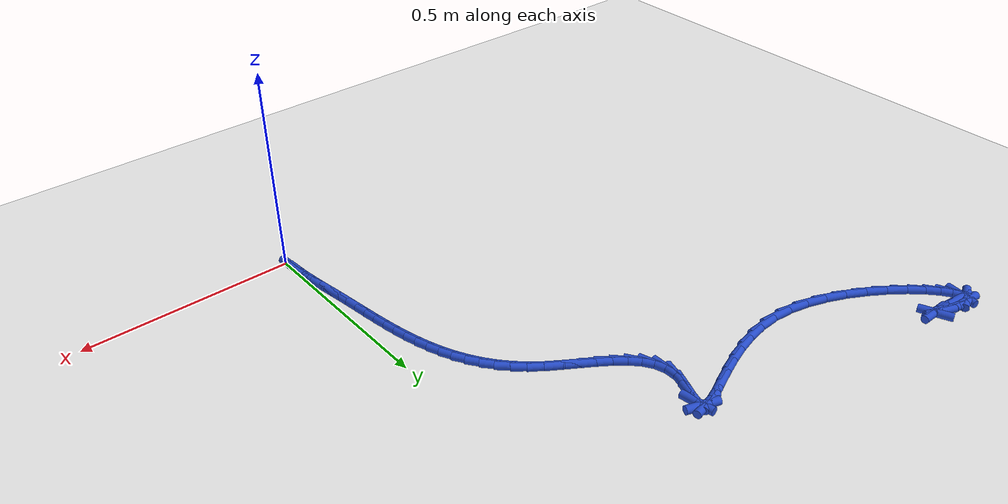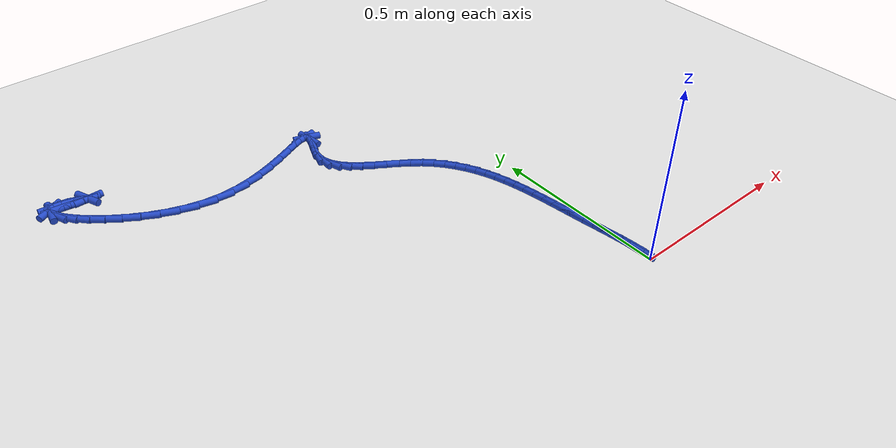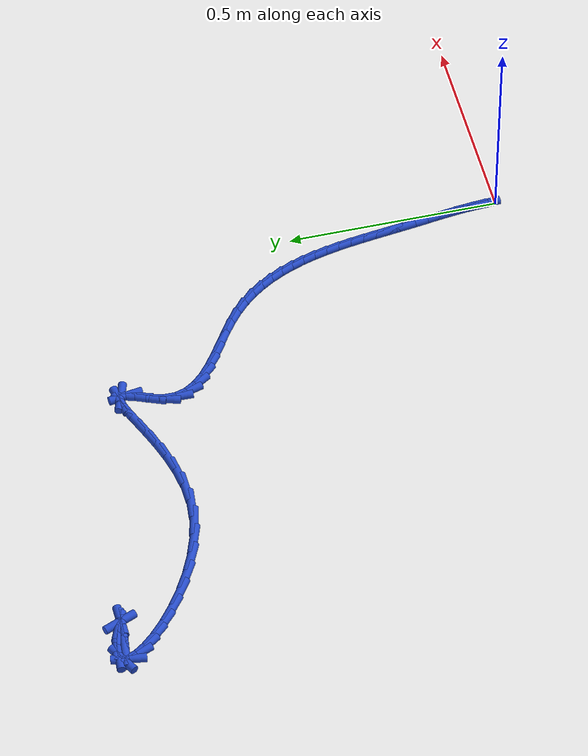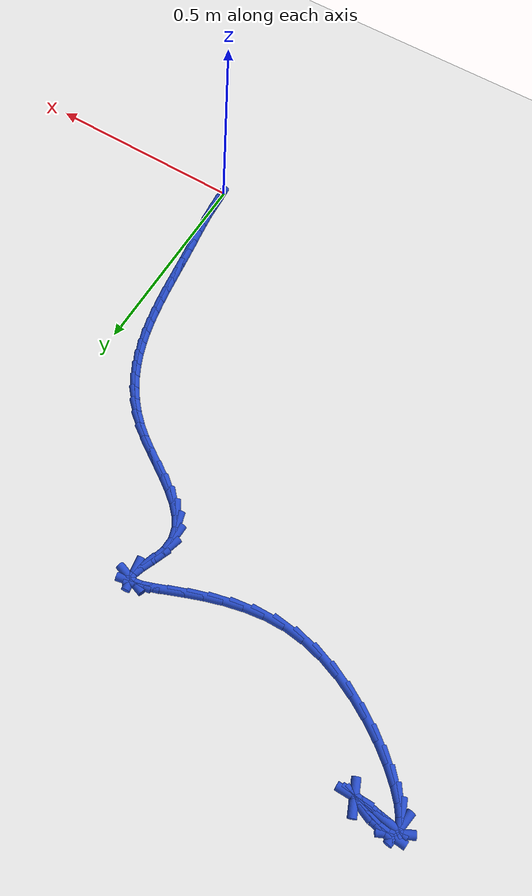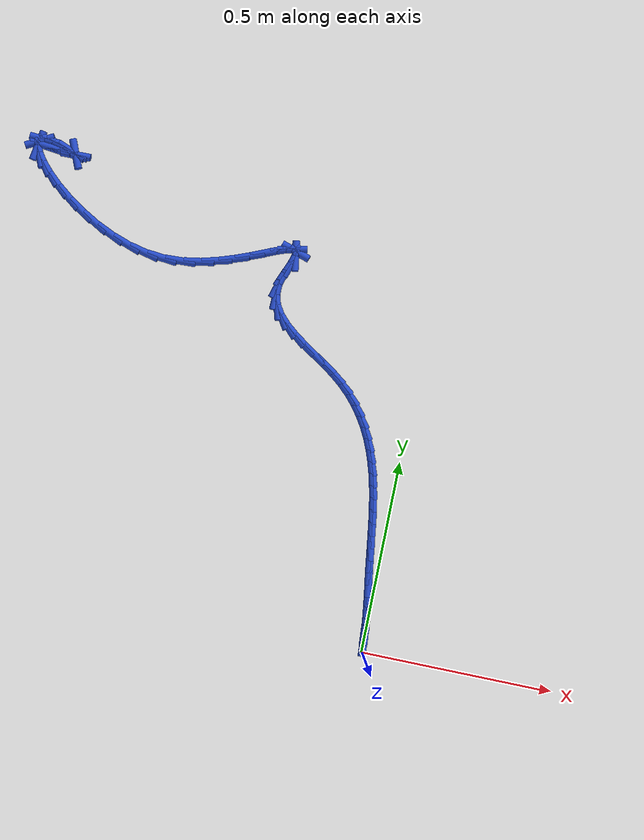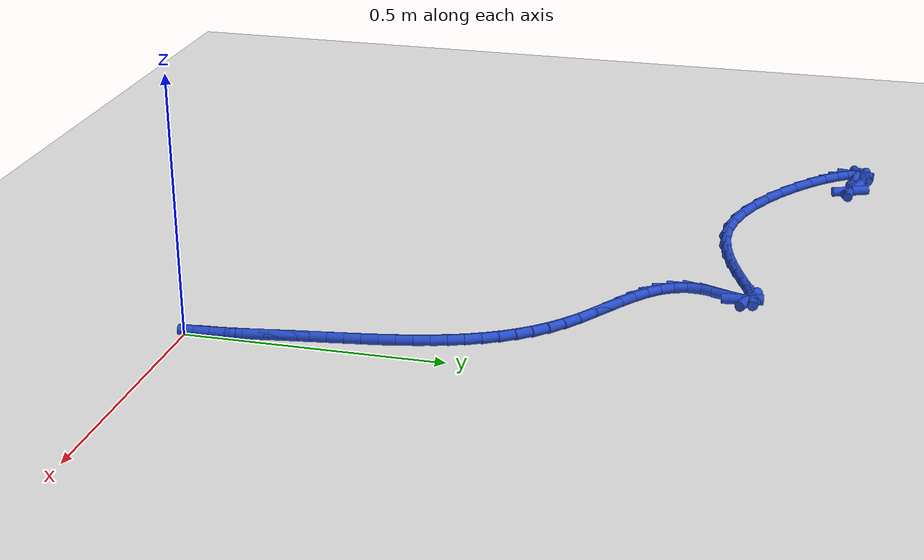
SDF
<sdf version="1.6">
 <world name="default">
  <model name="ground_plane">
   <static>1</static>
   <link name="link">
    <collision name="collision">
     <geometry><plane><normal>0 0 1</normal><size>100 100</size></plane></geometry>
     <surface><friction><ode><mu>100</mu><mu2>50</mu2></ode></friction></surface>
    </collision>
    <visual name="visual">
     <cast_shadows>0</cast_shadows>
     <geometry><plane><normal>0 0 1</normal><size>100 100</size></plane></geometry>
     <material>
      <script><uri>file://media/materials/scripts/gazebo.material</uri><name>Gazebo/WhiteGlow</name></script>
     </material>
    </visual>
   </link>
  </model>
  <model name="line">
   <link name="link_1">
    <pose>-0.0010793961114417964 0.030242250036836178 0.01 0 1.57 -1.4972439240679134</pose>
    <collision name="collision">
     <geometry><cylinder><radius>0.01</radius><length>0.08</length></cylinder></geometry>
    </collision>
    <visual name="visual">
     <material>
      <script><name>Gazebo/Blue</name><uri>file://media/materials/scripts/gazebo.material</uri></script>
     </material>
     <geometry><cylinder><radius>0.01</radius><length>0.08</length></cylinder></geometry>
    </visual>
   </link>
   <link name="link_2">
    <pose>-0.0033058834710195336 0.0604584056234154 0.01 0 1.57 -1.4671298274070912</pose>
    <collision name="collision">
     <geometry><cylinder><radius>0.01</radius><length>0.08</length></cylinder></geometry>
    </collision>
    <visual name="visual">
     <material>
      <script><name>Gazebo/Blue</name><uri>file://media/materials/scripts/gazebo.material</uri></script>
     </material>
     <geometry><cylinder><radius>0.01</radius><length>0.08</length></cylinder></geometry>
    </visual>
   </link>
   <link name="link_3">
    <pose>-0.006451480284367642 0.09069305658074162 0.01 0 1.57 -1.4448327646201642</pose>
    <collision name="collision">
     <geometry><cylinder><radius>0.01</radius><length>0.08</length></cylinder></geometry>
    </collision>
    <visual name="visual">
     <material>
      <script><name>Gazebo/Blue</name><uri>file://media/materials/scripts/gazebo.material</uri></script>
     </material>
     <geometry><cylinder><radius>0.01</radius><length>0.08</length></cylinder></geometry>
    </visual>
   </link>
   <link name="link_4">
    <pose>-0.010288204757120561 0.12099079272981879 0.01 0 1.57 -1.430309983116135</pose>
    <collision name="collision">
     <geometry><cylinder><radius>0.01</radius><length>0.08</length></cylinder></geometry>
    </collision>
    <visual name="visual">
     <material>
      <script><name>Gazebo/Blue</name><uri>file://media/materials/scripts/gazebo.material</uri></script>
     </material>
     <geometry><cylinder><radius>0.01</radius><length>0.08</length></cylinder></geometry>
    </visual>
   </link>
   <link name="link_5">
    <pose>-0.014588075094912717 0.15139620389165087 0.01 0 1.57 -1.4234627227017236</pose>
    <collision name="collision">
     <geometry><cylinder><radius>0.01</radius><length>0.08</length></cylinder></geometry>
    </collision>
    <visual name="visual">
     <material>
      <script><name>Gazebo/Blue</name><uri>file://media/materials/scripts/gazebo.material</uri></script>
     </material>
     <geometry><cylinder><radius>0.01</radius><length>0.08</length></cylinder></geometry>
    </visual>
   </link>
   <link name="link_6">
    <pose>-0.019123109503378553 0.18195387988724185 0.01 0 1.57 -1.4241637624771013</pose>
    <collision name="collision">
     <geometry><cylinder><radius>0.01</radius><length>0.08</length></cylinder></geometry>
    </collision>
    <visual name="visual">
     <material>
      <script><name>Gazebo/Blue</name><uri>file://media/materials/scripts/gazebo.material</uri></script>
     </material>
     <geometry><cylinder><radius>0.01</radius><length>0.08</length></cylinder></geometry>
    </visual>
   </link>
   <link name="link_7">
    <pose>-0.023665326188152494 0.21270841053759562 0.01 0 1.57 -1.4315012945426484</pose>
    <collision name="collision">
     <geometry><cylinder><radius>0.01</radius><length>0.08</length></cylinder></geometry>
    </collision>
    <visual name="visual">
     <material>
      <script><name>Gazebo/Blue</name><uri>file://media/materials/scripts/gazebo.material</uri></script>
     </material>
     <geometry><cylinder><radius>0.01</radius><length>0.08</length></cylinder></geometry>
    </visual>
   </link>
   <link name="link_8">
    <pose>-0.028009952000439854 0.24369651960343938 0.01 0 1.57 -1.4369575729298536</pose>
    <collision name="collision">
     <geometry><cylinder><radius>0.01</radius><length>0.08</length></cylinder></geometry>
    </collision>
    <visual name="visual">
     <material>
      <script><name>Gazebo/Blue</name><uri>file://media/materials/scripts/gazebo.material</uri></script>
     </material>
     <geometry><cylinder><radius>0.01</radius><length>0.08</length></cylinder></geometry>
    </visual>
   </link>
   <link name="link_9">
    <pose>-0.03220706884932136 0.2748685533254936 0.01 0 1.57 -1.4354091824036643</pose>
    <collision name="collision">
     <geometry><cylinder><radius>0.01</radius><length>0.08</length></cylinder></geometry>
    </collision>
    <visual name="visual">
     <material>
      <script><name>Gazebo/Blue</name><uri>file://media/materials/scripts/gazebo.material</uri></script>
     </material>
     <geometry><cylinder><radius>0.01</radius><length>0.08</length></cylinder></geometry>
    </visual>
   </link>
   <link name="link_10">
    <pose>-0.03646435201114002 0.3061214451366384 0.01 0 1.57 -1.4268272968068414</pose>
    <collision name="collision">
     <geometry><cylinder><radius>0.01</radius><length>0.08</length></cylinder></geometry>
    </collision>
    <visual name="visual">
     <material>
      <script><name>Gazebo/Blue</name><uri>file://media/materials/scripts/gazebo.material</uri></script>
     </material>
     <geometry><cylinder><radius>0.01</radius><length>0.08</length></cylinder></geometry>
    </visual>
   </link>
   <link name="link_11">
    <pose>-0.04099181286505175 0.33735133669905387 0.01 0 1.57 -1.41116424702753</pose>
    <collision name="collision">
     <geometry><cylinder><radius>0.01</radius><length>0.08</length></cylinder></geometry>
    </collision>
    <visual name="visual">
     <material>
      <script><name>Gazebo/Blue</name><uri>file://media/materials/scripts/gazebo.material</uri></script>
     </material>
     <geometry><cylinder><radius>0.01</radius><length>0.08</length></cylinder></geometry>
    </visual>
   </link>
   <link name="link_12">
    <pose>-0.045999462790212504 0.3684543696749204 0.01 0 1.57 -1.3882882878004281</pose>
    <collision name="collision">
     <geometry><cylinder><radius>0.01</radius><length>0.08</length></cylinder></geometry>
    </collision>
    <visual name="visual">
     <material>
      <script><name>Gazebo/Blue</name><uri>file://media/materials/scripts/gazebo.material</uri></script>
     </material>
     <geometry><cylinder><radius>0.01</radius><length>0.08</length></cylinder></geometry>
    </visual>
   </link>
   <link name="link_13">
    <pose>-0.05169731316577824 0.3993266857264182 0.01 0 1.57 -1.3580047832749678</pose>
    <collision name="collision">
     <geometry><cylinder><radius>0.01</radius><length>0.08</length></cylinder></geometry>
    </collision>
    <visual name="visual">
     <material>
      <script><name>Gazebo/Blue</name><uri>file://media/materials/scripts/gazebo.material</uri></script>
     </material>
     <geometry><cylinder><radius>0.01</radius><length>0.08</length></cylinder></geometry>
    </visual>
   </link>
   <link name="link_14">
    <pose>-0.058295375370904894 0.4298644265157277 0.01 0 1.57 -1.320089366613279</pose>
    <collision name="collision">
     <geometry><cylinder><radius>0.01</radius><length>0.08</length></cylinder></geometry>
    </collision>
    <visual name="visual">
     <material>
      <script><name>Gazebo/Blue</name><uri>file://media/materials/scripts/gazebo.material</uri></script>
     </material>
     <geometry><cylinder><radius>0.01</radius><length>0.08</length></cylinder></geometry>
    </visual>
   </link>
   <link name="link_15">
    <pose>-0.06600366078474841 0.459963733705029 0.01 0 1.57 -1.2743368600120932</pose>
    <collision name="collision">
     <geometry><cylinder><radius>0.01</radius><length>0.08</length></cylinder></geometry>
    </collision>
    <visual name="visual">
     <material>
      <script><name>Gazebo/Blue</name><uri>file://media/materials/scripts/gazebo.material</uri></script>
     </material>
     <geometry><cylinder><radius>0.01</radius><length>0.08</length></cylinder></geometry>
    </visual>
   </link>
   <link name="link_16">
    <pose>-0.07503218078646476 0.48952074895650255 0.01 0 1.57 -1.2206291843248722</pose>
    <collision name="collision">
     <geometry><cylinder><radius>0.01</radius><length>0.08</length></cylinder></geometry>
    </collision>
    <visual name="visual">
     <material>
      <script><name>Gazebo/Blue</name><uri>file://media/materials/scripts/gazebo.material</uri></script>
     </material>
     <geometry><cylinder><radius>0.01</radius><length>0.08</length></cylinder></geometry>
    </visual>
   </link>
   <link name="link_17">
    <pose>-0.08559094675520985 0.5184316139323285 0.01 0 1.57 -1.1590224466731098</pose>
    <collision name="collision">
     <geometry><cylinder><radius>0.01</radius><length>0.08</length></cylinder></geometry>
    </collision>
    <visual name="visual">
     <material>
      <script><name>Gazebo/Blue</name><uri>file://media/materials/scripts/gazebo.material</uri></script>
     </material>
     <geometry><cylinder><radius>0.01</radius><length>0.08</length></cylinder></geometry>
    </visual>
   </link>
   <link name="link_18">
    <pose>-0.09788997007013965 0.5465924702946873 0.01 0 1.57 -1.0898466677093053</pose>
    <collision name="collision">
     <geometry><cylinder><radius>0.01</radius><length>0.08</length></cylinder></geometry>
    </collision>
    <visual name="visual">
     <material>
      <script><name>Gazebo/Blue</name><uri>file://media/materials/scripts/gazebo.material</uri></script>
     </material>
     <geometry><cylinder><radius>0.01</radius><length>0.08</length></cylinder></geometry>
    </visual>
   </link>
   <link name="link_19">
    <pose>-0.11213926211041013 0.5738994597057592 0.01 0 1.57 -1.013801095192671</pose>
    <collision name="collision">
     <geometry><cylinder><radius>0.01</radius><length>0.08</length></cylinder></geometry>
    </collision>
    <visual name="visual">
     <material>
      <script><name>Gazebo/Blue</name><uri>file://media/materials/scripts/gazebo.material</uri></script>
     </material>
     <geometry><cylinder><radius>0.01</radius><length>0.08</length></cylinder></geometry>
    </visual>
   </link>
   <link name="link_20">
    <pose>-0.1285488342551772 0.6002487238277243 0.01 0 1.57 -0.9320166604354299</pose>
    <collision name="collision">
     <geometry><cylinder><radius>0.01</radius><length>0.08</length></cylinder></geometry>
    </collision>
    <visual name="visual">
     <material>
      <script><name>Gazebo/Blue</name><uri>file://media/materials/scripts/gazebo.material</uri></script>
     </material>
     <geometry><cylinder><radius>0.01</radius><length>0.08</length></cylinder></geometry>
    </visual>
   </link>
   <link name="link_21">
    <pose>-0.14732869788359682 0.625536404322763 0.01 0 1.57 -0.8460520378949752</pose>
    <collision name="collision">
     <geometry><cylinder><radius>0.01</radius><length>0.08</length></cylinder></geometry>
    </collision>
    <visual name="visual">
     <material>
      <script><name>Gazebo/Blue</name><uri>file://media/materials/scripts/gazebo.material</uri></script>
     </material>
     <geometry><cylinder><radius>0.01</radius><length>0.08</length></cylinder></geometry>
    </visual>
   </link>
   <link name="link_22">
    <pose>-0.16868886437482494 0.6496586428530557 0.01 0 1.57 -0.7577998931712115</pose>
    <collision name="collision">
     <geometry><cylinder><radius>0.01</radius><length>0.08</length></cylinder></geometry>
    </collision>
    <visual name="visual">
     <material>
      <script><name>Gazebo/Blue</name><uri>file://media/materials/scripts/gazebo.material</uri></script>
     </material>
     <geometry><cylinder><radius>0.01</radius><length>0.08</length></cylinder></geometry>
    </visual>
   </link>
   <link name="link_23">
    <pose>-0.19283934510801748 0.6725115810807826 0.01 0 1.57 -0.6706661141050235</pose>
    <collision name="collision">
     <geometry><cylinder><radius>0.01</radius><length>0.08</length></cylinder></geometry>
    </collision>
    <visual name="visual">
     <material>
      <script><name>Gazebo/Blue</name><uri>file://media/materials/scripts/gazebo.material</uri></script>
     </material>
     <geometry><cylinder><radius>0.01</radius><length>0.08</length></cylinder></geometry>
    </visual>
   </link>
   <link name="link_24">
    <pose>-0.2199390092678758 0.6940108004372118 0.01 0 1.57 -0.6062227403508732</pose>
    <collision name="collision">
     <geometry><cylinder><radius>0.01</radius><length>0.08</length></cylinder></geometry>
    </collision>
    <visual name="visual">
     <material>
      <script><name>Gazebo/Blue</name><uri>file://media/materials/scripts/gazebo.material</uri></script>
     </material>
     <geometry><cylinder><radius>0.01</radius><length>0.08</length></cylinder></geometry>
    </visual>
   </link>
   <link name="link_25">
    <pose>-0.2493248066144553 0.7143843039067745 0.01 0 1.57 -0.5764447515231088</pose>
    <collision name="collision">
     <geometry><cylinder><radius>0.01</radius><length>0.08</length></cylinder></geometry>
    </collision>
    <visual name="visual">
     <material>
      <script><name>Gazebo/Blue</name><uri>file://media/materials/scripts/gazebo.material</uri></script>
     </material>
     <geometry><cylinder><radius>0.01</radius><length>0.08</length></cylinder></geometry>
    </visual>
   </link>
   <link name="link_26">
    <pose>-0.27967066860889955 0.7341121157797765 0.01 0 1.57 -0.5785941751113316</pose>
    <collision name="collision">
     <geometry><cylinder><radius>0.01</radius><length>0.08</length></cylinder></geometry>
    </collision>
    <visual name="visual">
     <material>
      <script><name>Gazebo/Blue</name><uri>file://media/materials/scripts/gazebo.material</uri></script>
     </material>
     <geometry><cylinder><radius>0.01</radius><length>0.08</length></cylinder></geometry>
    </visual>
   </link>
   <link name="link_27">
    <pose>-0.30963162527543586 0.7536814450121989 0.01 0 1.57 -0.6139588634260293</pose>
    <collision name="collision">
     <geometry><cylinder><radius>0.01</radius><length>0.08</length></cylinder></geometry>
    </collision>
    <visual name="visual">
     <material>
      <script><name>Gazebo/Blue</name><uri>file://media/materials/scripts/gazebo.material</uri></script>
     </material>
     <geometry><cylinder><radius>0.01</radius><length>0.08</length></cylinder></geometry>
    </visual>
   </link>
   <link name="link_28">
    <pose>-0.3378627066382919 0.7735795005600232 0.01 0 1.57 -0.6888554672768857</pose>
    <collision name="collision">
     <geometry><cylinder><radius>0.01</radius><length>0.08</length></cylinder></geometry>
    </collision>
    <visual name="visual">
     <material>
      <script><name>Gazebo/Blue</name><uri>file://media/materials/scripts/gazebo.material</uri></script>
     </material>
     <geometry><cylinder><radius>0.01</radius><length>0.08</length></cylinder></geometry>
    </visual>
   </link>
   <link name="link_29">
    <pose>-0.36301894272169405 0.7942934913792294 0.01 0 1.57 -0.815344943659757</pose>
    <collision name="collision">
     <geometry><cylinder><radius>0.01</radius><length>0.08</length></cylinder></geometry>
    </collision>
    <visual name="visual">
     <material>
      <script><name>Gazebo/Blue</name><uri>file://media/materials/scripts/gazebo.material</uri></script>
     </material>
     <geometry><cylinder><radius>0.01</radius><length>0.08</length></cylinder></geometry>
    </visual>
   </link>
   <link name="link_30">
    <pose>-0.3837553635498704 0.8163106264258 0.01 0 1.57 -1.0094243329663657</pose>
    <collision name="collision">
     <geometry><cylinder><radius>0.01</radius><length>0.08</length></cylinder></geometry>
    </collision>
    <visual name="visual">
     <material>
      <script><name>Gazebo/Blue</name><uri>file://media/materials/scripts/gazebo.material</uri></script>
     </material>
     <geometry><cylinder><radius>0.01</radius><length>0.08</length></cylinder></geometry>
    </visual>
   </link>
   <link name="link_31">
    <pose>-0.3987269991470475 0.8401181146557147 0.01 0 1.57 -1.2780610288470609</pose>
    <collision name="collision">
     <geometry><cylinder><radius>0.01</radius><length>0.08</length></cylinder></geometry>
    </collision>
    <visual name="visual">
     <material>
      <script><name>Gazebo/Blue</name><uri>file://media/materials/scripts/gazebo.material</uri></script>
     </material>
     <geometry><cylinder><radius>0.01</radius><length>0.08</length></cylinder></geometry>
    </visual>
   </link>
   <link name="link_32">
    <pose>-0.40658887953745293 0.8662031650249556 0.01 0 1.57 1.550249878488988</pose>
    <collision name="collision">
     <geometry><cylinder><radius>0.01</radius><length>0.08</length></cylinder></geometry>
    </collision>
    <visual name="visual">
     <material>
      <script><name>Gazebo/Blue</name><uri>file://media/materials/scripts/gazebo.material</uri></script>
     </material>
     <geometry><cylinder><radius>0.01</radius><length>0.08</length></cylinder></geometry>
    </visual>
   </link>
   <link name="link_33">
    <pose>-0.4059960347453139 0.8950529864895036 0.01 0 1.57 1.2862029149961807</pose>
    <collision name="collision">
     <geometry><cylinder><radius>0.01</radius><length>0.08</length></cylinder></geometry>
    </collision>
    <visual name="visual">
     <material>
      <script><name>Gazebo/Blue</name><uri>file://media/materials/scripts/gazebo.material</uri></script>
     </material>
     <geometry><cylinder><radius>0.01</radius><length>0.08</length></cylinder></geometry>
    </visual>
   </link>
   <link name="link_34">
    <pose>-0.396853515012452 0.926305813460769 0.01 0 1.57 1.1871699023313167</pose>
    <collision name="collision">
     <geometry><cylinder><radius>0.01</radius><length>0.08</length></cylinder></geometry>
    </collision>
    <visual name="visual">
     <material>
      <script><name>Gazebo/Blue</name><uri>file://media/materials/scripts/gazebo.material</uri></script>
     </material>
     <geometry><cylinder><radius>0.01</radius><length>0.08</length></cylinder></geometry>
    </visual>
   </link>
   <link name="link_35">
    <pose>-0.3850576069627497 0.9555308204203452 0.01 0 1.57 1.2628143666298952</pose>
    <collision name="collision">
     <geometry><cylinder><radius>0.01</radius><length>0.08</length></cylinder></geometry>
    </collision>
    <visual name="visual">
     <material>
      <script><name>Gazebo/Blue</name><uri>file://media/materials/scripts/gazebo.material</uri></script>
     </material>
     <geometry><cylinder><radius>0.01</radius><length>0.08</length></cylinder></geometry>
    </visual>
   </link>
   <link name="link_36">
    <pose>-0.37816752769008594 0.9771906642832503 0.01 0 1.57 -1.4206220915391952</pose>
    <collision name="collision">
     <geometry><cylinder><radius>0.01</radius><length>0.08</length></cylinder></geometry>
    </collision>
    <visual name="visual">
     <material>
      <script><name>Gazebo/Blue</name><uri>file://media/materials/scripts/gazebo.material</uri></script>
     </material>
     <geometry><cylinder><radius>0.01</radius><length>0.08</length></cylinder></geometry>
    </visual>
   </link>
   <link name="link_37">
    <pose>-0.3799528780520467 0.988989684827292 0.01 0 1.57 -0.3224654441758275</pose>
    <collision name="collision">
     <geometry><cylinder><radius>0.01</radius><length>0.08</length></cylinder></geometry>
    </collision>
    <visual name="visual">
     <material>
      <script><name>Gazebo/Blue</name><uri>file://media/materials/scripts/gazebo.material</uri></script>
     </material>
     <geometry><cylinder><radius>0.01</radius><length>0.08</length></cylinder></geometry>
    </visual>
   </link>
   <link name="link_38">
    <pose>-0.3898855505117467 0.9923084672691068 0.01 0 1.57 0.20396368487632466</pose>
    <collision name="collision">
     <geometry><cylinder><radius>0.01</radius><length>0.08</length></cylinder></geometry>
    </collision>
    <visual name="visual">
     <material>
      <script><name>Gazebo/Blue</name><uri>file://media/materials/scripts/gazebo.material</uri></script>
     </material>
     <geometry><cylinder><radius>0.01</radius><length>0.08</length></cylinder></geometry>
    </visual>
   </link>
   <link name="link_39">
    <pose>-0.40720547740940005 0.9887260147414699 0.01 0 1.57 0.3560043414878191</pose>
    <collision name="collision">
     <geometry><cylinder><radius>0.01</radius><length>0.08</length></cylinder></geometry>
    </collision>
    <visual name="visual">
     <material>
      <script><name>Gazebo/Blue</name><uri>file://media/materials/scripts/gazebo.material</uri></script>
     </material>
     <geometry><cylinder><radius>0.01</radius><length>0.08</length></cylinder></geometry>
    </visual>
   </link>
   <link name="link_40">
    <pose>-0.43115259108522064 0.9798213303771566 0.01 0 1.57 0.4012131841923045</pose>
    <collision name="collision">
     <geometry><cylinder><radius>0.01</radius><length>0.08</length></cylinder></geometry>
    </collision>
    <visual name="visual">
     <material>
      <script><name>Gazebo/Blue</name><uri>file://media/materials/scripts/gazebo.material</uri></script>
     </material>
     <geometry><cylinder><radius>0.01</radius><length>0.08</length></cylinder></geometry>
    </visual>
   </link>
   <link name="link_41">
    <pose>-0.4609668238794226 0.9671734173089418 0.01 0 1.57 0.40115716610041635</pose>
    <collision name="collision">
     <geometry><cylinder><radius>0.01</radius><length>0.08</length></cylinder></geometry>
    </collision>
    <visual name="visual">
     <material>
      <script><name>Gazebo/Blue</name><uri>file://media/materials/scripts/gazebo.material</uri></script>
     </material>
     <geometry><cylinder><radius>0.01</radius><length>0.08</length></cylinder></geometry>
    </visual>
   </link>
   <link name="link_42">
    <pose>-0.4958881081322197 0.9523612786696009 0.01 0 1.57 0.37368356504472544</pose>
    <collision name="collision">
     <geometry><cylinder><radius>0.01</radius><length>0.08</length></cylinder></geometry>
    </collision>
    <visual name="visual">
     <material>
      <script><name>Gazebo/Blue</name><uri>file://media/materials/scripts/gazebo.material</uri></script>
     </material>
     <geometry><cylinder><radius>0.01</radius><length>0.08</length></cylinder></geometry>
    </visual>
   </link>
   <link name="link_43">
    <pose>-0.5351563761838262 0.9369639175919092 0.01 0 1.57 0.32423749838795846</pose>
    <collision name="collision">
     <geometry><cylinder><radius>0.01</radius><length>0.08</length></cylinder></geometry>
    </collision>
    <visual name="visual">
     <material>
      <script><name>Gazebo/Blue</name><uri>file://media/materials/scripts/gazebo.material</uri></script>
     </material>
     <geometry><cylinder><radius>0.01</radius><length>0.08</length></cylinder></geometry>
    </visual>
   </link>
   <link name="link_44">
    <pose>-0.5780115603744562 0.9225603372086413 0.01 0 1.57 0.2534137149376096</pose>
    <collision name="collision">
     <geometry><cylinder><radius>0.01</radius><length>0.08</length></cylinder></geometry>
    </collision>
    <visual name="visual">
     <material>
      <script><name>Gazebo/Blue</name><uri>file://media/materials/scripts/gazebo.material</uri></script>
     </material>
     <geometry><cylinder><radius>0.01</radius><length>0.08</length></cylinder></geometry>
    </visual>
   </link>
   <link name="link_45">
    <pose>-0.6236935930443233 0.9107295406525732 0.01 0 1.57 0.15945561878747366</pose>
    <collision name="collision">
     <geometry><cylinder><radius>0.01</radius><length>0.08</length></cylinder></geometry>
    </collision>
    <visual name="visual">
     <material>
      <script><name>Gazebo/Blue</name><uri>file://media/materials/scripts/gazebo.material</uri></script>
     </material>
     <geometry><cylinder><radius>0.01</radius><length>0.08</length></cylinder></geometry>
    </visual>
   </link>
   <link name="link_46">
    <pose>-0.6714424065336424 0.9030505310564794 0.01 0 1.57 0.03969371709392719</pose>
    <collision name="collision">
     <geometry><cylinder><radius>0.01</radius><length>0.08</length></cylinder></geometry>
    </collision>
    <visual name="visual">
     <material>
      <script><name>Gazebo/Blue</name><uri>file://media/materials/scripts/gazebo.material</uri></script>
     </material>
     <geometry><cylinder><radius>0.01</radius><length>0.08</length></cylinder></geometry>
    </visual>
   </link>
   <link name="link_47">
    <pose>-0.7204979331826262 0.9011023115531354 0.01 0 1.57 -0.10300616908809843</pose>
    <collision name="collision">
     <geometry><cylinder><radius>0.01</radius><length>0.08</length></cylinder></geometry>
    </collision>
    <visual name="visual">
     <material>
      <script><name>Gazebo/Blue</name><uri>file://media/materials/scripts/gazebo.material</uri></script>
     </material>
     <geometry><cylinder><radius>0.01</radius><length>0.08</length></cylinder></geometry>
    </visual>
   </link>
   <link name="link_48">
    <pose>-0.7700902275220379 0.9062287676766682 0.01 0 1.57 -0.23494045824968374</pose>
    <collision name="collision">
     <geometry><cylinder><radius>0.01</radius><length>0.08</length></cylinder></geometry>
    </collision>
    <visual name="visual">
     <material>
      <script><name>Gazebo/Blue</name><uri>file://media/materials/scripts/gazebo.material</uri></script>
     </material>
     <geometry><cylinder><radius>0.01</radius><length>0.08</length></cylinder></geometry>
    </visual>
   </link>
   <link name="link_49">
    <pose>-0.8193759084340188 0.9180258252093576 0.01 0 1.57 -0.3448037854052913</pose>
    <collision name="collision">
     <geometry><cylinder><radius>0.01</radius><length>0.08</length></cylinder></geometry>
    </collision>
    <visual name="visual">
     <material>
      <script><name>Gazebo/Blue</name><uri>file://media/materials/scripts/gazebo.material</uri></script>
     </material>
     <geometry><cylinder><radius>0.01</radius><length>0.08</length></cylinder></geometry>
    </visual>
   </link>
   <link name="link_50">
    <pose>-0.8674785107365116 0.9353019230148576 0.01 0 1.57 -0.4379298929330122</pose>
    <collision name="collision">
     <geometry><cylinder><radius>0.01</radius><length>0.08</length></cylinder></geometry>
    </collision>
    <visual name="visual">
     <material>
      <script><name>Gazebo/Blue</name><uri>file://media/materials/scripts/gazebo.material</uri></script>
     </material>
     <geometry><cylinder><radius>0.01</radius><length>0.08</length></cylinder></geometry>
    </visual>
   </link>
   <link name="link_51">
    <pose>-0.9135214095128178 0.9568616978562421 0.01 0 1.57 -0.5194217289778663</pose>
    <collision name="collision">
     <geometry><cylinder><radius>0.01</radius><length>0.08</length></cylinder></geometry>
    </collision>
    <visual name="visual">
     <material>
      <script><name>Gazebo/Blue</name><uri>file://media/materials/scripts/gazebo.material</uri></script>
     </material>
     <geometry><cylinder><radius>0.01</radius><length>0.08</length></cylinder></geometry>
    </visual>
   </link>
   <link name="link_52">
    <pose>-0.9566279798462399 0.9815097864965862 0.01 0 1.57 -0.5940616421185152</pose>
    <collision name="collision">
     <geometry><cylinder><radius>0.01</radius><length>0.08</length></cylinder></geometry>
    </collision>
    <visual name="visual">
     <material>
      <script><name>Gazebo/Blue</name><uri>file://media/materials/scripts/gazebo.material</uri></script>
     </material>
     <geometry><cylinder><radius>0.01</radius><length>0.08</length></cylinder></geometry>
    </visual>
   </link>
   <link name="link_53">
    <pose>-0.9959215968200792 1.0080508256989646 0.01 0 1.57 -0.6668573409596705</pose>
    <collision name="collision">
     <geometry><cylinder><radius>0.01</radius><length>0.08</length></cylinder></geometry>
    </collision>
    <visual name="visual">
     <material>
      <script><name>Gazebo/Blue</name><uri>file://media/materials/scripts/gazebo.material</uri></script>
     </material>
     <geometry><cylinder><radius>0.01</radius><length>0.08</length></cylinder></geometry>
    </visual>
   </link>
   <link name="link_54">
    <pose>-1.030525635517638 1.0352894522264522 0.01 0 1.57 -0.7442410845214185</pose>
    <collision name="collision">
     <geometry><cylinder><radius>0.01</radius><length>0.08</length></cylinder></geometry>
    </collision>
    <visual name="visual">
     <material>
      <script><name>Gazebo/Blue</name><uri>file://media/materials/scripts/gazebo.material</uri></script>
     </material>
     <geometry><cylinder><radius>0.01</radius><length>0.08</length></cylinder></geometry>
    </visual>
   </link>
   <link name="link_55">
    <pose>-1.0595634710222186 1.0620303028421239 0.01 0 1.57 -0.8368339495621614</pose>
    <collision name="collision">
     <geometry><cylinder><radius>0.01</radius><length>0.08</length></cylinder></geometry>
    </collision>
    <visual name="visual">
     <material>
      <script><name>Gazebo/Blue</name><uri>file://media/materials/scripts/gazebo.material</uri></script>
     </material>
     <geometry><cylinder><radius>0.01</radius><length>0.08</length></cylinder></geometry>
    </visual>
   </link>
   <link name="link_56">
    <pose>-1.0821584784171225 1.087078014309054 0.01 0 1.57 -0.9672506630544655</pose>
    <collision name="collision">
     <geometry><cylinder><radius>0.01</radius><length>0.08</length></cylinder></geometry>
    </collision>
    <visual name="visual">
     <material>
      <script><name>Gazebo/Blue</name><uri>file://media/materials/scripts/gazebo.material</uri></script>
     </material>
     <geometry><cylinder><radius>0.01</radius><length>0.08</length></cylinder></geometry>
    </visual>
   </link>
   <link name="link_57">
    <pose>-1.0974340327856518 1.1092372233903176 0.01 0 1.57 -1.197496023455213</pose>
    <collision name="collision">
     <geometry><cylinder><radius>0.01</radius><length>0.08</length></cylinder></geometry>
    </collision>
    <visual name="visual">
     <material>
      <script><name>Gazebo/Blue</name><uri>file://media/materials/scripts/gazebo.material</uri></script>
     </material>
     <geometry><cylinder><radius>0.01</radius><length>0.08</length></cylinder></geometry>
    </visual>
   </link>
   <link name="link_58">
    <pose>-1.1045135092111087 1.1273125668489896 0.01 0 1.57 1.4162700365128498</pose>
    <collision name="collision">
     <geometry><cylinder><radius>0.01</radius><length>0.08</length></cylinder></geometry>
    </collision>
    <visual name="visual">
     <material>
      <script><name>Gazebo/Blue</name><uri>file://media/materials/scripts/gazebo.material</uri></script>
     </material>
     <geometry><cylinder><radius>0.01</radius><length>0.08</length></cylinder></geometry>
    </visual>
   </link>
   <link name="link_59">
    <pose>-1.102520282776795 1.1401086814481447 0.01 0 1.57 0.4868334210226846</pose>
    <collision name="collision">
     <geometry><cylinder><radius>0.01</radius><length>0.08</length></cylinder></geometry>
    </collision>
    <visual name="visual">
     <material>
      <script><name>Gazebo/Blue</name><uri>file://media/materials/scripts/gazebo.material</uri></script>
     </material>
     <geometry><cylinder><radius>0.01</radius><length>0.08</length></cylinder></geometry>
    </visual>
   </link>
   <link name="link_60">
    <pose>-1.0905777285660128 1.1464302039508572 0.01 0 1.57 -0.05906640362695847</pose>
    <collision name="collision">
     <geometry><cylinder><radius>0.01</radius><length>0.08</length></cylinder></geometry>
    </collision>
    <visual name="visual">
     <material>
      <script><name>Gazebo/Blue</name><uri>file://media/materials/scripts/gazebo.material</uri></script>
     </material>
     <geometry><cylinder><radius>0.01</radius><length>0.08</length></cylinder></geometry>
    </visual>
   </link>
   <link name="link_61">
    <pose>-1.067813456619347 1.145084034388114 0.01 0 1.57 -0.2565820646898393</pose>
    <collision name="collision">
     <geometry><cylinder><radius>0.01</radius><length>0.08</length></cylinder></geometry>
    </collision>
    <visual name="visual">
     <material>
      <script><name>Gazebo/Blue</name><uri>file://media/materials/scripts/gazebo.material</uri></script>
     </material>
     <geometry><cylinder><radius>0.01</radius><length>0.08</length></cylinder></geometry>
    </visual>
   </link>
   <link name="link_62">
    <pose>-1.0376419504355314 1.1371680860147368 0.01 0 1.57 -0.31182022867360376</pose>
    <collision name="collision">
     <geometry><cylinder><radius>0.01</radius><length>0.08</length></cylinder></geometry>
    </collision>
    <visual name="visual">
     <material>
      <script><name>Gazebo/Blue</name><uri>file://media/materials/scripts/gazebo.material</uri></script>
     </material>
     <geometry><cylinder><radius>0.01</radius><length>0.08</length></cylinder></geometry>
    </visual>
   </link>
   <link name="link_63">
    <pose>-1.0143641620968498 1.129664824281417 0.01 0 1.57 -0.38246307213703995</pose>
    <collision name="collision">
     <geometry><cylinder><radius>0.01</radius><length>0.08</length></cylinder></geometry>
    </collision>
    <visual name="visual">
     <material>
      <script><name>Gazebo/Blue</name><uri>file://media/materials/scripts/gazebo.material</uri></script>
     </material>
     <geometry><cylinder><radius>0.01</radius><length>0.08</length></cylinder></geometry>
    </visual>
   </link>
   <link name="link_64">
    <pose>-1.0027214514802136 1.1249812930701855 0.01 0 1.57 -1.176811339419271</pose>
    <collision name="collision">
     <geometry><cylinder><radius>0.01</radius><length>0.08</length></cylinder></geometry>
    </collision>
    <visual name="visual">
     <material>
      <script><name>Gazebo/Blue</name><uri>file://media/materials/scripts/gazebo.material</uri></script>
     </material>
     <geometry><cylinder><radius>0.01</radius><length>0.08</length></cylinder></geometry>
    </visual>
   </link>
   <link name="link_65">
    <pose>-1.0017967439737756 1.1227569461339122 0.01 0 1.57 0.016209609024027603</pose>
    <collision name="collision">
     <geometry><cylinder><radius>0.01</radius><length>0.08</length></cylinder></geometry>
    </collision>
    <visual name="visual">
     <material>
      <script><name>Gazebo/Blue</name><uri>file://media/materials/scripts/gazebo.material</uri></script>
     </material>
     <geometry><cylinder><radius>0.01</radius><length>0.08</length></cylinder></geometry>
    </visual>
   </link>
   <link name="link_66">
    <pose>-1.0106369802979063 1.1226136368076216 0.01 0 1.57 -0.08812213307603997</pose>
    <collision name="collision">
     <geometry><cylinder><radius>0.01</radius><length>0.08</length></cylinder></geometry>
    </collision>
    <visual name="visual">
     <material>
      <script><name>Gazebo/Blue</name><uri>file://media/materials/scripts/gazebo.material</uri></script>
     </material>
     <geometry><cylinder><radius>0.01</radius><length>0.08</length></cylinder></geometry>
    </visual>
   </link>
   <link name="link_67">
    <pose>-1.028289101172977 1.1241732184263387 0.01 0 1.57 -0.11258418655997683</pose>
    <collision name="collision">
     <geometry><cylinder><radius>0.01</radius><length>0.08</length></cylinder></geometry>
    </collision>
    <visual name="visual">
     <material>
      <script><name>Gazebo/Blue</name><uri>file://media/materials/scripts/gazebo.material</uri></script>
     </material>
     <geometry><cylinder><radius>0.01</radius><length>0.08</length></cylinder></geometry>
    </visual>
   </link>
   <link name="link_68">
    <pose>-1.0538000473193585 1.1270575443250888 0.01 0 1.57 -0.11763183637661032</pose>
    <collision name="collision">
     <geometry><cylinder><radius>0.01</radius><length>0.08</length></cylinder></geometry>
    </collision>
    <visual name="visual">
     <material>
      <script><name>Gazebo/Blue</name><uri>file://media/materials/scripts/gazebo.material</uri></script>
     </material>
     <geometry><cylinder><radius>0.01</radius><length>0.08</length></cylinder></geometry>
    </visual>
   </link>
   <link name="link_69">
    <pose>-1.0862167594574212 1.130888467838896 0.01 0 1.57 -0.11415982840350508</pose>
    <collision name="collision">
     <geometry><cylinder><radius>0.01</radius><length>0.08</length></cylinder></geometry>
    </collision>
    <visual name="visual">
     <material>
      <script><name>Gazebo/Blue</name><uri>file://media/materials/scripts/gazebo.material</uri></script>
     </material>
     <geometry><cylinder><radius>0.01</radius><length>0.08</length></cylinder></geometry>
    </visual>
   </link>
   <link name="link_281">
    <pose>-0.0011393343264904663 0.030232590398776675 0.01 0 1.57 -1.4832533814161974</pose>
    <collision name="collision">
     <geometry><cylinder><radius>0.01</radius><length>0.08</length></cylinder></geometry>
    </collision>
    <visual name="visual">
     <material>
      <script><name>Gazebo/Blue</name><uri>file://media/materials/scripts/gazebo.material</uri></script>
     </material>
     <geometry><cylinder><radius>0.01</radius><length>0.08</length></cylinder></geometry>
    </visual>
   </link>
   <link name="link_282">
    <pose>-0.003785389191408922 0.06038112851894184 0.01 0 1.57 -1.508186670628491</pose>
    <collision name="collision">
     <geometry><cylinder><radius>0.01</radius><length>0.08</length></cylinder></geometry>
    </collision>
    <visual name="visual">
     <material>
      <script><name>Gazebo/Blue</name><uri>file://media/materials/scripts/gazebo.material</uri></script>
     </material>
     <geometry><cylinder><radius>0.01</radius><length>0.08</length></cylinder></geometry>
    </visual>
   </link>
  </model>
 </world>
</sdf>
